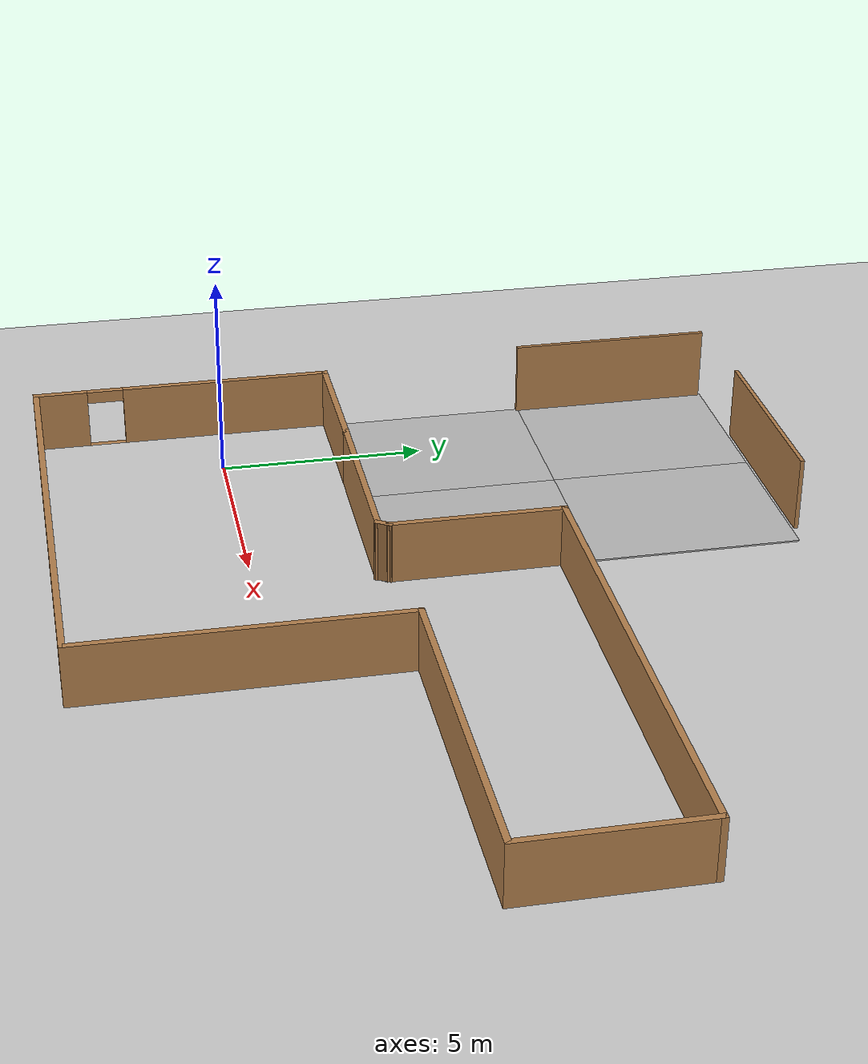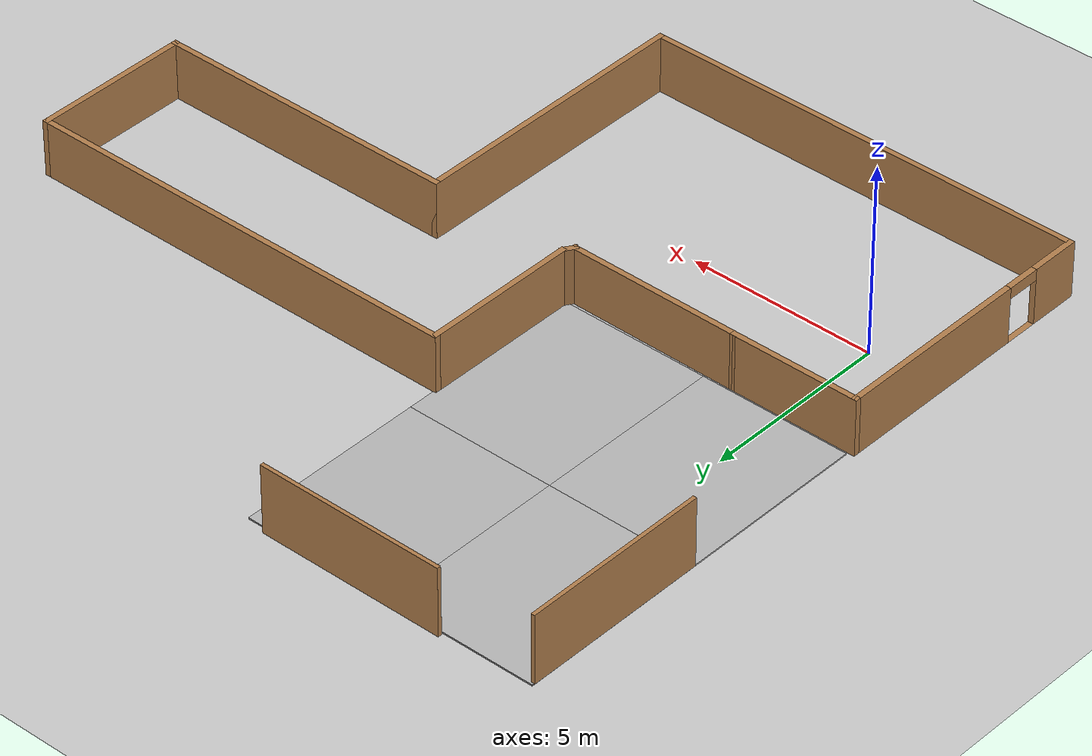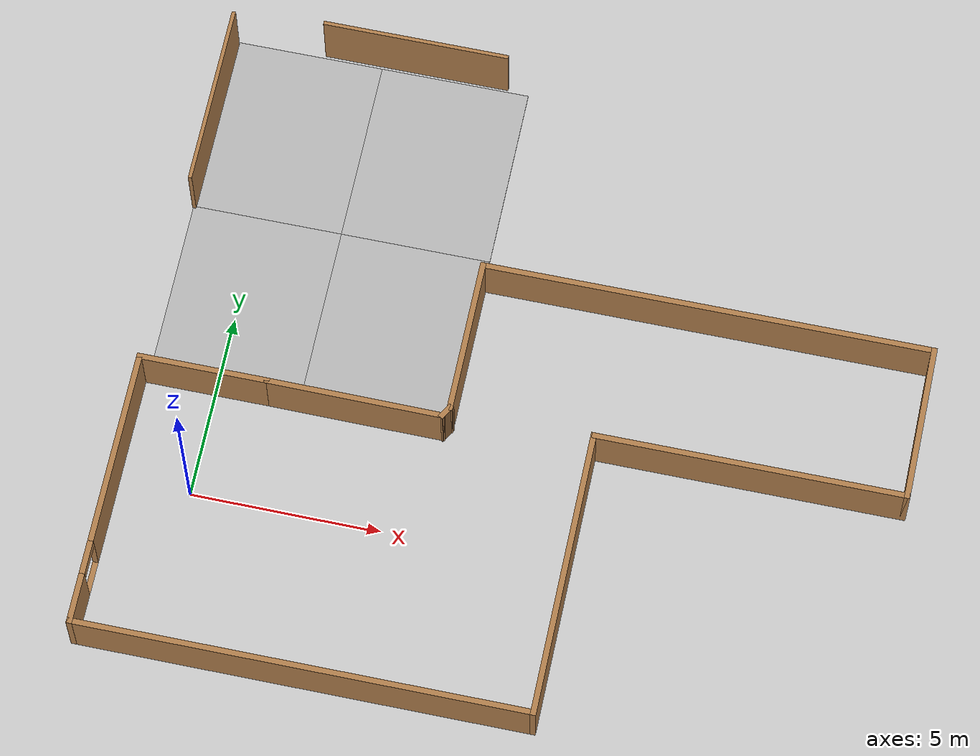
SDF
<sdf version="1.7">
 <world name="default">
  <light name="sun" type="directional">
   <pose>0 0 10 0 -0 0</pose>
   <diffuse>0.8 0.8 0.8 1</diffuse>
   <specular>0.2 0.2 0.2 1</specular>
   <attenuation>
    <range>1000</range>
    <constant>0.9</constant>
    <linear>0.01</linear>
    <quadratic>0.001</quadratic>
   </attenuation>
   <direction>-0.5 0.1 -0.9</direction>
   <spot><inner_angle>0</inner_angle><outer_angle>0</outer_angle><falloff>0</falloff></spot>
  </light>
  <model name="ground_plane">
   <static>1</static>
   <link name="link">
    <collision name="collision">
     <geometry><plane><normal>0 0 1</normal><size>100 100</size></plane></geometry>
     <surface>
      <contact><collide_bitmask>65535</collide_bitmask></contact>
      <friction><ode><mu>100</mu><mu2>50</mu2></ode></friction>
     </surface>
    </collision>
    <visual name="visual">
     <cast_shadows>0</cast_shadows>
     <geometry><plane><normal>0 0 1</normal><size>100 100</size></plane></geometry>
     <material>
      <script><uri>file://media/materials/scripts/gazebo.material</uri><name>Gazebo/Grey</name></script>
     </material>
    </visual>
   </link>
  </model>
  <gravity>0 0 -9.8</gravity>
  <magnetic_field>6e-06 2.3e-05 -4.2e-05</magnetic_field>
  <atmosphere type="adiabatic"/>
  <physics type="ode">
   <max_step_size>0.001</max_step_size>
   <real_time_factor>1</real_time_factor>
   <real_time_update_rate>1000</real_time_update_rate>
  </physics>
  <scene><ambient>0.4 0.4 0.4 1</ambient><background>0.7 0.7 0.7 1</background><shadows>1</shadows></scene>
  <audio><device>default</device></audio>
  <spherical_coordinates>
   <surface_model>EARTH_WGS84</surface_model>
   <latitude_deg>0</latitude_deg>
   <longitude_deg>0</longitude_deg>
   <elevation>0</elevation>
   <heading_deg>0</heading_deg>
  </spherical_coordinates>
  <model name="Untitled">
   <pose>8.035 1.37 0 0 -0 0</pose>
   <link name="Wall_10">
    <collision name="Wall_10_Collision">
     <geometry><box><size>4.25 0.15 1.5</size></box></geometry>
     <pose>0 0 0.75 0 -0 0</pose>
    </collision>
    <visual name="Wall_10_Visual">
     <pose>0 0 0.75 0 -0 0</pose>
     <geometry><box><size>4.25 0.15 1.5</size></box></geometry>
     <material>
      <script><uri>file://media/materials/scripts/gazebo.material</uri><name>Gazebo/Wood</name></script>
      <ambient>1 1 1 1</ambient>
     </material>
     <meta><layer>0</layer></meta>
    </visual>
    <pose>9.975 3.8 0 0 -0 1.5708</pose>
   </link>
   <link name="Wall_11">
    <collision name="Wall_11_Collision">
     <geometry><box><size>12 0.15 1.5</size></box></geometry>
     <pose>0 0 0.75 0 -0 0</pose>
    </collision>
    <visual name="Wall_11_Visual">
     <pose>0 0 0.75 0 -0 0</pose>
     <geometry><box><size>12 0.15 1.5</size></box></geometry>
     <material>
      <script><uri>file://media/materials/scripts/gazebo.material</uri><name>Gazebo/Wood</name></script>
      <ambient>1 1 1 1</ambient>
     </material>
     <meta><layer>0</layer></meta>
    </visual>
    <pose>4.05 5.85 0 0 -0 3.14159</pose>
   </link>
   <link name="Wall_12">
    <collision name="Wall_12_Collision">
     <geometry><box><size>4.25 0.15 1.5</size></box></geometry>
     <pose>0 0 0.75 0 -0 0</pose>
    </collision>
    <visual name="Wall_12_Visual">
     <pose>0 0 0.75 0 -0 0</pose>
     <geometry><box><size>4.25 0.15 1.5</size></box></geometry>
     <material>
      <script><uri>file://media/materials/scripts/gazebo.material</uri><name>Gazebo/Wood</name></script>
      <ambient>1 1 1 1</ambient>
     </material>
     <meta><layer>0</layer></meta>
    </visual>
    <pose>-1.875 3.8 0 0 -0 -1.5708</pose>
   </link>
   <link name="Wall_14">
    <collision name="Wall_14_Collision">
     <geometry><box><size>4.75 0.15 1.5</size></box></geometry>
     <pose>0 0 0.75 0 -0 0</pose>
    </collision>
    <visual name="Wall_14_Visual">
     <pose>0 0 0.75 0 -0 0</pose>
     <geometry><box><size>4.75 0.15 1.5</size></box></geometry>
     <material>
      <script><uri>file://media/materials/scripts/gazebo.material</uri><name>Gazebo/Wood</name></script>
      <ambient>1 1 1 1</ambient>
     </material>
     <meta><layer>0</layer></meta>
    </visual>
    <pose>-4.325 1.5155 0 0 -0 -0.006739</pose>
   </link>
   <link name="Wall_15">
    <collision name="Wall_15_Collision">
     <geometry><box><size>0.441548 0.15 1.5</size></box></geometry>
     <pose>0 0 0.75 0 -0 0</pose>
    </collision>
    <visual name="Wall_15_Visual">
     <pose>0 0 0.75 0 -0 0</pose>
     <geometry><box><size>0.441548 0.15 1.5</size></box></geometry>
     <material>
      <script><uri>file://media/materials/scripts/gazebo.material</uri><name>Gazebo/Wood</name></script>
      <ambient>1 1 1 1</ambient>
     </material>
     <meta><layer>0</layer></meta>
    </visual>
    <pose>-1.95 1.625 0 0 -0 1.03038</pose>
   </link>
   <link name="Wall_5">
    <collision name="Wall_5_Collision">
     <geometry><box><size>3.5 0.15 1.5</size></box></geometry>
     <pose>0 0 0.75 0 -0 0</pose>
    </collision>
    <visual name="Wall_5_Visual">
     <pose>0 0 0.75 0 -0 0</pose>
     <geometry><box><size>3.5 0.15 1.5</size></box></geometry>
     <material>
      <script><uri>file://media/materials/scripts/gazebo.material</uri><name>Gazebo/Wood</name></script>
      <ambient>1 1 1 1</ambient>
     </material>
     <meta><layer>0</layer></meta>
    </visual>
    <pose>-8.3 1.531 0 0 -0 3.14159</pose>
   </link>
   <link name="Wall_6">
    <pose>-9.975 -2.1595 0 0 -0 -1.5708</pose>
    <visual name="Wall_6_Visual_0">
     <pose>-1.12851 0 0.75 0 -0 0</pose>
     <geometry><box><size>5.27397 0.15 1.5</size></box></geometry>
     <material>
      <script><uri>file://media/materials/scripts/gazebo.material</uri><name>Gazebo/Wood</name></script>
      <ambient>1 1 1 1</ambient>
     </material>
     <meta><layer>0</layer></meta>
    </visual>
    <collision name="Wall_6_Collision_0">
     <geometry><box><size>5.27397 0.15 1.5</size></box></geometry>
     <pose>-1.12851 0 0.75 0 -0 0</pose>
    </collision>
    <visual name="Wall_6_Visual_1">
     <pose>3.08699 0 0.75 0 -0 0</pose>
     <geometry><box><size>1.35703 0.15 1.5</size></box></geometry>
     <material>
      <script><uri>file://media/materials/scripts/gazebo.material</uri><name>Gazebo/Wood</name></script>
      <ambient>1 1 1 1</ambient>
     </material>
     <meta><layer>0</layer></meta>
    </visual>
    <collision name="Wall_6_Collision_1">
     <geometry><box><size>1.35703 0.15 1.5</size></box></geometry>
     <pose>3.08699 0 0.75 0 -0 0</pose>
    </collision>
    <visual name="Wall_6_Visual_2">
     <pose>1.95847 0 0 0 -0 0</pose>
     <geometry><box><size>0.9 0.15 0</size></box></geometry>
     <material>
      <script><uri>file://media/materials/scripts/gazebo.material</uri><name>Gazebo/Wood</name></script>
      <ambient>1 1 1 1</ambient>
     </material>
     <meta><layer>0</layer></meta>
    </visual>
    <collision name="Wall_6_Collision_2">
     <geometry><box><size>0.9 0.15 0</size></box></geometry>
     <pose>1.95847 0 0 0 -0 0</pose>
    </collision>
    <visual name="Wall_6_Visual_3">
     <pose>1.95847 0 1.35 0 -0 0</pose>
     <geometry><box><size>0.9 0.15 0.3</size></box></geometry>
     <material>
      <script><uri>file://media/materials/scripts/gazebo.material</uri><name>Gazebo/Wood</name></script>
      <ambient>1 1 1 1</ambient>
     </material>
     <meta><layer>0</layer></meta>
    </visual>
    <collision name="Wall_6_Collision_3">
     <geometry><box><size>0.9 0.15 0.3</size></box></geometry>
     <pose>1.95847 0 1.35 0 -0 0</pose>
    </collision>
   </link>
   <link name="Wall_7">
    <collision name="Wall_7_Collision">
     <geometry><box><size>12 0.15 1.5</size></box></geometry>
     <pose>0 0 0.75 0 -0 0</pose>
    </collision>
    <visual name="Wall_7_Visual">
     <pose>0 0 0.75 0 -0 0</pose>
     <geometry><box><size>12 0.15 1.5</size></box></geometry>
     <material>
      <script><uri>file://media/materials/scripts/gazebo.material</uri><name>Gazebo/Wood</name></script>
      <ambient>1 1 1 1</ambient>
     </material>
     <meta><layer>0</layer></meta>
    </visual>
    <pose>-4.05 -5.85 0 0 -0 0</pose>
   </link>
   <link name="Wall_8">
    <collision name="Wall_8_Collision">
     <geometry><box><size>7.75 0.15 1.5</size></box></geometry>
     <pose>0 0 0.75 0 -0 0</pose>
    </collision>
    <visual name="Wall_8_Visual">
     <pose>0 0 0.75 0 -0 0</pose>
     <geometry><box><size>7.75 0.15 1.5</size></box></geometry>
     <material>
      <script><uri>file://media/materials/scripts/gazebo.material</uri><name>Gazebo/Wood</name></script>
      <ambient>1 1 1 1</ambient>
     </material>
     <meta><layer>0</layer></meta>
    </visual>
    <pose>1.875 -2.05 0 0 -0 1.5708</pose>
   </link>
   <link name="Wall_9">
    <collision name="Wall_9_Collision">
     <geometry><box><size>8.25 0.15 1.5</size></box></geometry>
     <pose>0 0 0.75 0 -0 0</pose>
    </collision>
    <visual name="Wall_9_Visual">
     <pose>0 0 0.75 0 -0 0</pose>
     <geometry><box><size>8.25 0.15 1.5</size></box></geometry>
     <material>
      <script><uri>file://media/materials/scripts/gazebo.material</uri><name>Gazebo/Wood</name></script>
      <ambient>1 1 1 1</ambient>
     </material>
     <meta><layer>0</layer></meta>
    </visual>
    <pose>5.925 1.75 0 0 -0 0</pose>
   </link>
   <static>1</static>
  </model>
  <model name="mud_box">
   <static>1</static>
   <link name="link">
    <collision name="collision"><geometry><box><size>8 10 0.2</size></box></geometry></collision>
    <visual name="visual_1">
     <pose>-2 2.5 0 0 -0 0</pose>
     <cast_shadows>0</cast_shadows>
     <geometry><box><size>4 5 0.2</size></box></geometry>
     <material>
      <script>
       <uri>model://mud_box/materials/scripts</uri>
       <uri>model://mud_box/materials/textures</uri>
       <name>vrc/mud</name>
      </script>
     </material>
    </visual>
    <visual name="visual_2">
     <pose>2 2.5 0 0 -0 0</pose>
     <cast_shadows>0</cast_shadows>
     <geometry><box><size>4 5 0.2</size></box></geometry>
     <material>
      <script>
       <uri>model://mud_box/materials/scripts</uri>
       <uri>model://mud_box/materials/textures</uri>
       <name>vrc/mud</name>
      </script>
     </material>
    </visual>
    <visual name="visual_3">
     <pose>2 -2.5 0 0 -0 0</pose>
     <cast_shadows>0</cast_shadows>
     <geometry><box><size>4 5 0.2</size></box></geometry>
     <material>
      <script>
       <uri>model://mud_box/materials/scripts</uri>
       <uri>model://mud_box/materials/textures</uri>
       <name>vrc/mud</name>
      </script>
     </material>
    </visual>
    <visual name="visual_4">
     <pose>-2 -2.5 0 0 -0 0</pose>
     <cast_shadows>0</cast_shadows>
     <geometry><box><size>4 5 0.2</size></box></geometry>
     <material>
      <script>
       <uri>model://mud_box/materials/scripts</uri>
       <uri>model://mud_box/materials/textures</uri>
       <name>vrc/mud</name>
      </script>
     </material>
    </visual>
   </link>
   <pose>2.16605 8.01541 -0.090493 0 -0 0</pose>
  </model>
  <model name="fence">
   <static>1</static>
   <link name="link">
    <pose>0 0 0.915 0 -0 0</pose>
    <collision name="collision"><geometry><box><size>0.1 5 1.83</size></box></geometry></collision>
    <visual name="visual">
     <cast_shadows>0</cast_shadows>
     <geometry><box><size>0.1 5 1.83</size></box></geometry>
     <material>
      <script>
       <uri>https://fuel.ignitionrobotics.org/1.0/athackst/models/fence/2/files/materials/scripts</uri>
       <uri>https://fuel.ignitionrobotics.org/1.0/athackst/models/fence/2/files/materials/textures</uri>
       <name>Fence/WoodBoarding</name>
      </script>
     </material>
    </visual>
   </link>
   <pose>-1.80264 10.4623 0 0 -0 0</pose>
  </model>
  <model name="fence_0">
   <static>1</static>
   <link name="link">
    <pose>0 0 0.915 0 -0 0</pose>
    <collision name="collision"><geometry><box><size>0.1 5 1.83</size></box></geometry></collision>
    <visual name="visual">
     <cast_shadows>0</cast_shadows>
     <geometry><box><size>0.1 5 1.83</size></box></geometry>
     <material>
      <script>
       <uri>https://fuel.ignitionrobotics.org/1.0/athackst/models/fence/2/files/materials/scripts</uri>
       <uri>https://fuel.ignitionrobotics.org/1.0/athackst/models/fence/2/files/materials/textures</uri>
       <name>Fence/WoodBoarding</name>
      </script>
     </material>
    </visual>
   </link>
   <pose>3.10267 13.1276 0 0 -0 1.56884</pose>
  </model>
 </world>
</sdf>
